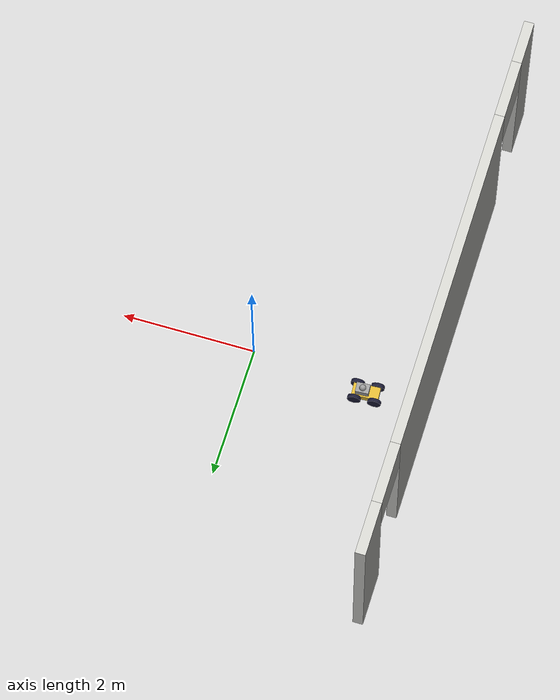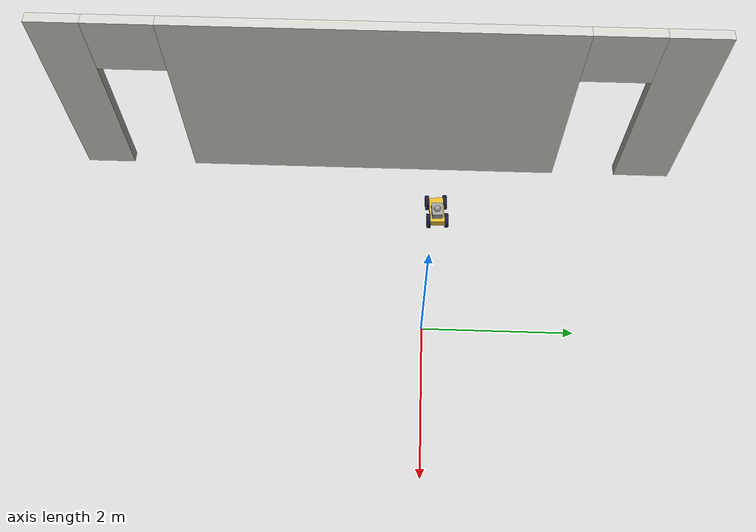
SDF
<sdf version="1.6">
 <world name="default">
  <model name="ground_plane">
   <static>1</static>
   <link name="link">
    <collision name="collision">
     <geometry><plane><normal>0 0 1</normal><size>100 100</size></plane></geometry>
     <surface>
      <contact><collide_bitmask>65535</collide_bitmask></contact>
      <friction><ode><mu>100</mu><mu2>50</mu2></ode></friction>
     </surface>
    </collision>
    <visual name="visual">
     <cast_shadows>0</cast_shadows>
     <geometry><plane><normal>0 0 1</normal><size>100 100</size></plane></geometry>
     <material>
      <script><uri>file://media/materials/scripts/gazebo.material</uri><name>Gazebo/Grey</name></script>
     </material>
    </visual>
   </link>
  </model>
  <model name="house">
   <link name="Wall_43">
    <pose>-2.65056 -0.678 0 0 0 -1.5708</pose>
    <visual name="Wall_43_Visual_0">
     <pose>-3.85891 0 1.4 0 -0 0</pose>
     <geometry><box><size>0.782186 0.15 2.8</size></box></geometry>
     <material>
      <script><uri>file://media/materials/scripts/gazebo.material</uri><name>Gazebo/CeilingTiled</name></script>
      <ambient>1 1 1 1</ambient>
      <shader type="pixel"/>
     </material>
     <meta><layer>0</layer></meta>
    </visual>
    <visual name="Wall_43_Visual_1">
     <pose>0.052093 0 1.4 0 -0 0</pose>
     <geometry><box><size>5.23981 0.15 2.8</size></box></geometry>
     <material>
      <script><uri>file://media/materials/scripts/gazebo.material</uri><name>Gazebo/CeilingTiled</name></script>
      <ambient>1 1 1 1</ambient>
      <shader type="pixel"/>
     </material>
     <meta><layer>0</layer></meta>
    </visual>
    <visual name="Wall_43_Visual_2">
     <pose>3.911 0 1.4 0 -0 0</pose>
     <geometry><box><size>0.678 0.15 2.8</size></box></geometry>
     <material>
      <script><uri>file://media/materials/scripts/gazebo.material</uri><name>Gazebo/CeilingTiled</name></script>
      <ambient>1 1 1 1</ambient>
      <shader type="pixel"/>
     </material>
     <meta><layer>0</layer></meta>
    </visual>
    <visual name="Wall_43_Visual_5">
     <pose>-3.01781 0 2.4 0 -0 0</pose>
     <geometry><box><size>0.9 0.15 0.8</size></box></geometry>
     <material>
      <script><uri>file://media/materials/scripts/gazebo.material</uri><name>Gazebo/CeilingTiled</name></script>
      <ambient>1 1 1 1</ambient>
      <shader type="pixel"/>
     </material>
     <meta><layer>0</layer></meta>
    </visual>
    <visual name="Wall_43_Visual_6">
     <pose>3.122 0 2.4 0 -0 0</pose>
     <geometry><box><size>0.9 0.15 0.8</size></box></geometry>
     <material>
      <script><uri>file://media/materials/scripts/gazebo.material</uri><name>Gazebo/CeilingTiled</name></script>
      <ambient>1 1 1 1</ambient>
      <shader type="pixel"/>
     </material>
     <meta><layer>0</layer></meta>
    </visual>
    <collision name="Wall_43_Collision_0">
     <pose>-3.85891 0 1.4 0 -0 0</pose>
     <geometry><box><size>0.782186 0.15 2.8</size></box></geometry>
     <surface>
      <friction>
       <ode><mu>1</mu><mu2>1</mu2><fdir1>0 0 0</fdir1><slip1>0</slip1><slip2>0</slip2></ode>
       <torsional>
        <coefficient>1</coefficient>
        <patch_radius>0</patch_radius>
        <surface_radius>0</surface_radius>
        <use_patch_radius>1</use_patch_radius>
        <ode><slip>0</slip></ode>
       </torsional>
      </friction>
      <bounce><restitution_coefficient>0</restitution_coefficient><threshold>1e+06</threshold></bounce>
      <contact>
       <collide_without_contact>0</collide_without_contact>
       <collide_without_contact_bitmask>1</collide_without_contact_bitmask>
       <collide_bitmask>1</collide_bitmask>
       <ode>
        <soft_cfm>0</soft_cfm>
        <soft_erp>0.2</soft_erp>
        <kp>1e+13</kp>
        <kd>1</kd>
        <max_vel>0.01</max_vel>
        <min_depth>0</min_depth>
       </ode>
       <bullet>
        <split_impulse>1</split_impulse>
        <split_impulse_penetration_threshold>-0.01</split_impulse_penetration_threshold>
        <soft_cfm>0</soft_cfm>
        <soft_erp>0.2</soft_erp>
        <kp>1e+13</kp>
        <kd>1</kd>
       </bullet>
      </contact>
     </surface>
    </collision>
    <collision name="Wall_43_Collision_1">
     <pose>0.052093 0 1.4 0 -0 0</pose>
     <geometry><box><size>5.23981 0.15 2.8</size></box></geometry>
     <surface>
      <friction>
       <ode><mu>1</mu><mu2>1</mu2><fdir1>0 0 0</fdir1><slip1>0</slip1><slip2>0</slip2></ode>
       <torsional>
        <coefficient>1</coefficient>
        <patch_radius>0</patch_radius>
        <surface_radius>0</surface_radius>
        <use_patch_radius>1</use_patch_radius>
        <ode><slip>0</slip></ode>
       </torsional>
      </friction>
      <bounce><restitution_coefficient>0</restitution_coefficient><threshold>1e+06</threshold></bounce>
      <contact>
       <collide_without_contact>0</collide_without_contact>
       <collide_without_contact_bitmask>1</collide_without_contact_bitmask>
       <collide_bitmask>1</collide_bitmask>
       <ode>
        <soft_cfm>0</soft_cfm>
        <soft_erp>0.2</soft_erp>
        <kp>1e+13</kp>
        <kd>1</kd>
        <max_vel>0.01</max_vel>
        <min_depth>0</min_depth>
       </ode>
       <bullet>
        <split_impulse>1</split_impulse>
        <split_impulse_penetration_threshold>-0.01</split_impulse_penetration_threshold>
        <soft_cfm>0</soft_cfm>
        <soft_erp>0.2</soft_erp>
        <kp>1e+13</kp>
        <kd>1</kd>
       </bullet>
      </contact>
     </surface>
    </collision>
    <collision name="Wall_43_Collision_2">
     <pose>3.911 0 1.4 0 -0 0</pose>
     <geometry><box><size>0.678 0.15 2.8</size></box></geometry>
     <surface>
      <friction>
       <ode><mu>1</mu><mu2>1</mu2><fdir1>0 0 0</fdir1><slip1>0</slip1><slip2>0</slip2></ode>
       <torsional>
        <coefficient>1</coefficient>
        <patch_radius>0</patch_radius>
        <surface_radius>0</surface_radius>
        <use_patch_radius>1</use_patch_radius>
        <ode><slip>0</slip></ode>
       </torsional>
      </friction>
      <bounce><restitution_coefficient>0</restitution_coefficient><threshold>1e+06</threshold></bounce>
      <contact>
       <collide_without_contact>0</collide_without_contact>
       <collide_without_contact_bitmask>1</collide_without_contact_bitmask>
       <collide_bitmask>1</collide_bitmask>
       <ode>
        <soft_cfm>0</soft_cfm>
        <soft_erp>0.2</soft_erp>
        <kp>1e+13</kp>
        <kd>1</kd>
        <max_vel>0.01</max_vel>
        <min_depth>0</min_depth>
       </ode>
       <bullet>
        <split_impulse>1</split_impulse>
        <split_impulse_penetration_threshold>-0.01</split_impulse_penetration_threshold>
        <soft_cfm>0</soft_cfm>
        <soft_erp>0.2</soft_erp>
        <kp>1e+13</kp>
        <kd>1</kd>
       </bullet>
      </contact>
     </surface>
    </collision>
    <collision name="Wall_43_Collision_5">
     <pose>-3.01781 0 2.4 0 -0 0</pose>
     <geometry><box><size>0.9 0.15 0.8</size></box></geometry>
     <surface>
      <friction>
       <ode><mu>1</mu><mu2>1</mu2><fdir1>0 0 0</fdir1><slip1>0</slip1><slip2>0</slip2></ode>
       <torsional>
        <coefficient>1</coefficient>
        <patch_radius>0</patch_radius>
        <surface_radius>0</surface_radius>
        <use_patch_radius>1</use_patch_radius>
        <ode><slip>0</slip></ode>
       </torsional>
      </friction>
      <bounce><restitution_coefficient>0</restitution_coefficient><threshold>1e+06</threshold></bounce>
      <contact>
       <collide_without_contact>0</collide_without_contact>
       <collide_without_contact_bitmask>1</collide_without_contact_bitmask>
       <collide_bitmask>1</collide_bitmask>
       <ode>
        <soft_cfm>0</soft_cfm>
        <soft_erp>0.2</soft_erp>
        <kp>1e+13</kp>
        <kd>1</kd>
        <max_vel>0.01</max_vel>
        <min_depth>0</min_depth>
       </ode>
       <bullet>
        <split_impulse>1</split_impulse>
        <split_impulse_penetration_threshold>-0.01</split_impulse_penetration_threshold>
        <soft_cfm>0</soft_cfm>
        <soft_erp>0.2</soft_erp>
        <kp>1e+13</kp>
        <kd>1</kd>
       </bullet>
      </contact>
     </surface>
    </collision>
    <collision name="Wall_43_Collision_6">
     <pose>3.122 0 2.4 0 -0 0</pose>
     <geometry><box><size>0.9 0.15 0.8</size></box></geometry>
     <surface>
      <friction>
       <ode><mu>1</mu><mu2>1</mu2><fdir1>0 0 0</fdir1><slip1>0</slip1><slip2>0</slip2></ode>
       <torsional>
        <coefficient>1</coefficient>
        <patch_radius>0</patch_radius>
        <surface_radius>0</surface_radius>
        <use_patch_radius>1</use_patch_radius>
        <ode><slip>0</slip></ode>
       </torsional>
      </friction>
      <bounce><restitution_coefficient>0</restitution_coefficient><threshold>1e+06</threshold></bounce>
      <contact>
       <collide_without_contact>0</collide_without_contact>
       <collide_without_contact_bitmask>1</collide_without_contact_bitmask>
       <collide_bitmask>1</collide_bitmask>
       <ode>
        <soft_cfm>0</soft_cfm>
        <soft_erp>0.2</soft_erp>
        <kp>1e+13</kp>
        <kd>1</kd>
        <max_vel>0.01</max_vel>
        <min_depth>0</min_depth>
       </ode>
       <bullet>
        <split_impulse>1</split_impulse>
        <split_impulse_penetration_threshold>-0.01</split_impulse_penetration_threshold>
        <soft_cfm>0</soft_cfm>
        <soft_erp>0.2</soft_erp>
        <kp>1e+13</kp>
        <kd>1</kd>
       </bullet>
      </contact>
     </surface>
    </collision>
   </link>
   <static>1</static>
  </model>
  <model name="robot">
   <link name="link_0">
    <pose>-0 -0 0.5 0 -0 0</pose>
    <inertial>
     <mass>1</mass>
     <inertia>
      <ixx>0.166667</ixx>
      <ixy>0</ixy>
      <ixz>0</ixz>
      <iyy>0.166667</iyy>
      <iyz>0</iyz>
      <izz>0.166667</izz>
     </inertia>
    </inertial>
    <visual name="visual">
     <geometry><box><size>0.4 0.2 0.1</size></box></geometry>
     <material>
      <lighting>1</lighting>
      <script><uri>file://media/materials/scripts/gazebo.material</uri><name>Gazebo/Gold</name></script>
      <shader type="pixel"><normal_map>__default__</normal_map></shader>
      <ambient>0.5 0.75 0 1</ambient>
      <diffuse>0.7 0.9 0 1</diffuse>
      <specular>0.2 0.2 0.2 1</specular>
      <emissive>0.1 0 0.1 1</emissive>
     </material>
    </visual>
    <collision name="collision">
     <geometry><box><size>0.4 0.2 0.1</size></box></geometry>
     <surface>
      <friction>
       <ode><mu>1</mu><mu2>1</mu2><fdir1>0 0 0</fdir1><slip1>0</slip1><slip2>0</slip2></ode>
       <torsional>
        <coefficient>1</coefficient>
        <patch_radius>0</patch_radius>
        <surface_radius>0</surface_radius>
        <use_patch_radius>1</use_patch_radius>
        <ode><slip>0</slip></ode>
       </torsional>
      </friction>
      <bounce><restitution_coefficient>0</restitution_coefficient><threshold>1e+06</threshold></bounce>
      <contact>
       <collide_without_contact>0</collide_without_contact>
       <collide_without_contact_bitmask>1</collide_without_contact_bitmask>
       <collide_bitmask>1</collide_bitmask>
       <ode>
        <soft_cfm>0</soft_cfm>
        <soft_erp>0.2</soft_erp>
        <kp>1e+13</kp>
        <kd>1</kd>
        <max_vel>0.01</max_vel>
        <min_depth>0</min_depth>
       </ode>
       <bullet>
        <split_impulse>1</split_impulse>
        <split_impulse_penetration_threshold>-0.01</split_impulse_penetration_threshold>
        <soft_cfm>0</soft_cfm>
        <soft_erp>0.2</soft_erp>
        <kp>1e+13</kp>
        <kd>1</kd>
       </bullet>
      </contact>
     </surface>
    </collision>
   </link>
   <link name="link_1">
    <pose>0.05 0 0.65 -2e-06 1.5e-05 -0.056012</pose>
    <inertial>
     <mass>1</mass>
     <inertia><ixx>0.1</ixx><ixy>0</ixy><ixz>0</ixz><iyy>0.1</iyy><iyz>0</iyz><izz>0.1</izz></inertia>
    </inertial>
    <visual name="visual">
     <geometry><sphere><radius>0.05</radius></sphere></geometry>
     <material>
      <lighting>1</lighting>
      <script><uri>file://media/materials/scripts/gazebo.material</uri><name>Gazebo/Grey</name></script>
      <shader type="pixel"><normal_map>__default__</normal_map></shader>
      <ambient>0 0 0 1</ambient>
      <diffuse>0 0 0 1</diffuse>
      <specular>0.01 0.01 0.01 1</specular>
      <emissive>0 1 0 1</emissive>
     </material>
    </visual>
    <collision name="collision">
     <geometry><sphere><radius>0.05</radius></sphere></geometry>
     <surface>
      <friction>
       <ode><mu>1</mu><mu2>1</mu2><fdir1>0 0 0</fdir1><slip1>0</slip1><slip2>0</slip2></ode>
       <torsional>
        <coefficient>1</coefficient>
        <patch_radius>0</patch_radius>
        <surface_radius>0</surface_radius>
        <use_patch_radius>1</use_patch_radius>
        <ode><slip>0</slip></ode>
       </torsional>
      </friction>
      <bounce><restitution_coefficient>0</restitution_coefficient><threshold>1e+06</threshold></bounce>
      <contact>
       <collide_without_contact>0</collide_without_contact>
       <collide_without_contact_bitmask>1</collide_without_contact_bitmask>
       <collide_bitmask>1</collide_bitmask>
       <ode>
        <soft_cfm>0</soft_cfm>
        <soft_erp>0.2</soft_erp>
        <kp>1e+13</kp>
        <kd>1</kd>
        <max_vel>0.01</max_vel>
        <min_depth>0</min_depth>
       </ode>
       <bullet>
        <split_impulse>1</split_impulse>
        <split_impulse_penetration_threshold>-0.01</split_impulse_penetration_threshold>
        <soft_cfm>0</soft_cfm>
        <soft_erp>0.2</soft_erp>
        <kp>1e+13</kp>
        <kd>1</kd>
       </bullet>
      </contact>
     </surface>
    </collision>
   </link>
   <link name="link_2">
    <pose>-0.15 -0.12501 0.5 1.5707 -0 0</pose>
    <inertial>
     <mass>1</mass>
     <inertia><ixx>0.145833</ixx><ixy>0</ixy><ixz>0</ixz><iyy>0.145833</iyy><iyz>0</iyz><izz>0.125</izz></inertia>
    </inertial>
    <visual name="visual">
     <geometry><cylinder><radius>0.1</radius><length>0.05</length></cylinder></geometry>
     <material>
      <lighting>1</lighting>
      <script><uri>file://media/materials/scripts/gazebo.material</uri><name>Gazebo/Grey</name></script>
      <shader type="pixel"><normal_map>__default__</normal_map></shader>
      <ambient>0.1 0.1 0.1 1</ambient>
      <diffuse>0.1 0.1 0.2 1</diffuse>
      <specular>0.01 0.01 0.01 1</specular>
      <emissive>0 0 0 1</emissive>
     </material>
    </visual>
    <collision name="collision">
     <geometry><cylinder><radius>0.1</radius><length>0.05</length></cylinder></geometry>
     <surface>
      <friction>
       <ode><mu>1</mu><mu2>1</mu2><fdir1>0 0 0</fdir1><slip1>0</slip1><slip2>0</slip2></ode>
       <torsional>
        <coefficient>1</coefficient>
        <patch_radius>0</patch_radius>
        <surface_radius>0</surface_radius>
        <use_patch_radius>1</use_patch_radius>
        <ode><slip>0</slip></ode>
       </torsional>
      </friction>
      <bounce><restitution_coefficient>0</restitution_coefficient><threshold>1e+06</threshold></bounce>
      <contact>
       <collide_without_contact>0</collide_without_contact>
       <collide_without_contact_bitmask>1</collide_without_contact_bitmask>
       <collide_bitmask>1</collide_bitmask>
       <ode>
        <soft_cfm>0</soft_cfm>
        <soft_erp>0.2</soft_erp>
        <kp>1e+13</kp>
        <kd>1</kd>
        <max_vel>0.01</max_vel>
        <min_depth>0</min_depth>
       </ode>
       <bullet>
        <split_impulse>1</split_impulse>
        <split_impulse_penetration_threshold>-0.01</split_impulse_penetration_threshold>
        <soft_cfm>0</soft_cfm>
        <soft_erp>0.2</soft_erp>
        <kp>1e+13</kp>
        <kd>1</kd>
       </bullet>
      </contact>
     </surface>
    </collision>
   </link>
   <link name="link_2_clone">
    <pose>0.15 -0.12501 0.5 1.5707 -0 0</pose>
    <inertial>
     <mass>1</mass>
     <inertia><ixx>0.145833</ixx><ixy>0</ixy><ixz>0</ixz><iyy>0.145833</iyy><iyz>0</iyz><izz>0.125</izz></inertia>
    </inertial>
    <visual name="visual">
     <geometry><cylinder><radius>0.1</radius><length>0.05</length></cylinder></geometry>
     <material>
      <lighting>1</lighting>
      <script><uri>file://media/materials/scripts/gazebo.material</uri><name>Gazebo/Grey</name></script>
      <shader type="pixel"><normal_map>__default__</normal_map></shader>
      <ambient>0.1 0.1 0.1 1</ambient>
      <diffuse>0.1 0.1 0.2 1</diffuse>
      <specular>0.01 0.01 0.01 1</specular>
      <emissive>0 0 0 1</emissive>
     </material>
    </visual>
    <collision name="collision">
     <geometry><cylinder><radius>0.1</radius><length>0.05</length></cylinder></geometry>
     <surface>
      <friction>
       <ode><mu>1</mu><mu2>1</mu2><fdir1>0 0 0</fdir1><slip1>0</slip1><slip2>0</slip2></ode>
       <torsional>
        <coefficient>1</coefficient>
        <patch_radius>0</patch_radius>
        <surface_radius>0</surface_radius>
        <use_patch_radius>1</use_patch_radius>
        <ode><slip>0</slip></ode>
       </torsional>
      </friction>
      <bounce><restitution_coefficient>0</restitution_coefficient><threshold>1e+06</threshold></bounce>
      <contact>
       <collide_without_contact>0</collide_without_contact>
       <collide_without_contact_bitmask>1</collide_without_contact_bitmask>
       <collide_bitmask>1</collide_bitmask>
       <ode>
        <soft_cfm>0</soft_cfm>
        <soft_erp>0.2</soft_erp>
        <kp>1e+13</kp>
        <kd>1</kd>
        <max_vel>0.01</max_vel>
        <min_depth>0</min_depth>
       </ode>
       <bullet>
        <split_impulse>1</split_impulse>
        <split_impulse_penetration_threshold>-0.01</split_impulse_penetration_threshold>
        <soft_cfm>0</soft_cfm>
        <soft_erp>0.2</soft_erp>
        <kp>1e+13</kp>
        <kd>1</kd>
       </bullet>
      </contact>
     </surface>
    </collision>
   </link>
   <link name="link_2_clone_0">
    <pose>0.15 0.1251 0.5 1.5707 -0 0</pose>
    <inertial>
     <mass>1</mass>
     <inertia><ixx>0.145833</ixx><ixy>0</ixy><ixz>0</ixz><iyy>0.145833</iyy><iyz>0</iyz><izz>0.125</izz></inertia>
    </inertial>
    <visual name="visual">
     <geometry><cylinder><radius>0.1</radius><length>0.05</length></cylinder></geometry>
     <material>
      <lighting>1</lighting>
      <script><uri>file://media/materials/scripts/gazebo.material</uri><name>Gazebo/Grey</name></script>
      <shader type="pixel"><normal_map>__default__</normal_map></shader>
      <ambient>0.1 0.1 0.1 1</ambient>
      <diffuse>0.1 0.1 0.2 1</diffuse>
      <specular>0.01 0.01 0.01 1</specular>
      <emissive>0 0 0 1</emissive>
     </material>
    </visual>
    <collision name="collision">
     <geometry><cylinder><radius>0.1</radius><length>0.05</length></cylinder></geometry>
     <surface>
      <friction>
       <ode><mu>1</mu><mu2>1</mu2><fdir1>0 0 0</fdir1><slip1>0</slip1><slip2>0</slip2></ode>
       <torsional>
        <coefficient>1</coefficient>
        <patch_radius>0</patch_radius>
        <surface_radius>0</surface_radius>
        <use_patch_radius>1</use_patch_radius>
        <ode><slip>0</slip></ode>
       </torsional>
      </friction>
      <bounce><restitution_coefficient>0</restitution_coefficient><threshold>1e+06</threshold></bounce>
      <contact>
       <collide_without_contact>0</collide_without_contact>
       <collide_without_contact_bitmask>1</collide_without_contact_bitmask>
       <collide_bitmask>1</collide_bitmask>
       <ode>
        <soft_cfm>0</soft_cfm>
        <soft_erp>0.2</soft_erp>
        <kp>1e+13</kp>
        <kd>1</kd>
        <max_vel>0.01</max_vel>
        <min_depth>0</min_depth>
       </ode>
       <bullet>
        <split_impulse>1</split_impulse>
        <split_impulse_penetration_threshold>-0.01</split_impulse_penetration_threshold>
        <soft_cfm>0</soft_cfm>
        <soft_erp>0.2</soft_erp>
        <kp>1e+13</kp>
        <kd>1</kd>
       </bullet>
      </contact>
     </surface>
    </collision>
   </link>
   <link name="link_2_clone_1">
    <pose>-0.15 0.12501 0.5 1.5707 -0 0</pose>
    <inertial>
     <mass>1</mass>
     <inertia><ixx>0.145833</ixx><ixy>0</ixy><ixz>0</ixz><iyy>0.145833</iyy><iyz>0</iyz><izz>0.125</izz></inertia>
    </inertial>
    <visual name="visual">
     <geometry><cylinder><radius>0.1</radius><length>0.05</length></cylinder></geometry>
     <material>
      <lighting>1</lighting>
      <script><uri>file://media/materials/scripts/gazebo.material</uri><name>Gazebo/Grey</name></script>
      <shader type="pixel"><normal_map>__default__</normal_map></shader>
      <ambient>0.1 0.1 0.1 1</ambient>
      <diffuse>0.1 0.1 0.2 1</diffuse>
      <specular>0 0 0 1</specular>
      <emissive>0 0 0 1</emissive>
     </material>
    </visual>
    <collision name="collision">
     <geometry><cylinder><radius>0.1</radius><length>0.05</length></cylinder></geometry>
     <surface>
      <friction>
       <ode><mu>1</mu><mu2>1</mu2><fdir1>0 0 0</fdir1><slip1>0</slip1><slip2>0</slip2></ode>
       <torsional>
        <coefficient>1</coefficient>
        <patch_radius>0</patch_radius>
        <surface_radius>0</surface_radius>
        <use_patch_radius>1</use_patch_radius>
        <ode><slip>0</slip></ode>
       </torsional>
      </friction>
      <bounce><restitution_coefficient>0</restitution_coefficient><threshold>1e+06</threshold></bounce>
      <contact>
       <collide_without_contact>0</collide_without_contact>
       <collide_without_contact_bitmask>1</collide_without_contact_bitmask>
       <collide_bitmask>1</collide_bitmask>
       <ode>
        <soft_cfm>0</soft_cfm>
        <soft_erp>0.2</soft_erp>
        <kp>1e+13</kp>
        <kd>1</kd>
        <max_vel>0.01</max_vel>
        <min_depth>0</min_depth>
       </ode>
       <bullet>
        <split_impulse>1</split_impulse>
        <split_impulse_penetration_threshold>-0.01</split_impulse_penetration_threshold>
        <soft_cfm>0</soft_cfm>
        <soft_erp>0.2</soft_erp>
        <kp>1e+13</kp>
        <kd>1</kd>
       </bullet>
      </contact>
     </surface>
    </collision>
   </link>
   <link name="link_5">
    <pose>0.05 -0 0.6 0 -0 0</pose>
    <inertial>
     <mass>1</mass>
     <inertia>
      <ixx>0.166667</ixx>
      <ixy>0</ixy>
      <ixz>0</ixz>
      <iyy>0.166667</iyy>
      <iyz>0</iyz>
      <izz>0.166667</izz>
     </inertia>
    </inertial>
    <visual name="visual">
     <geometry><box><size>0.2 0.15 0.1</size></box></geometry>
     <material>
      <lighting>1</lighting>
      <script><uri>file://media/materials/scripts/gazebo.material</uri><name>Gazebo/Grey</name></script>
      <shader type="pixel"><normal_map>__default__</normal_map></shader>
      <ambient>0.5 0.5 0.5 1</ambient>
      <diffuse>0.7 0.7 0.7 1</diffuse>
      <specular>0.2 0.2 0.2 1</specular>
      <emissive>0 0 0 1</emissive>
     </material>
    </visual>
    <collision name="collision">
     <geometry><box><size>0.2 0.15 0.1</size></box></geometry>
     <surface>
      <friction>
       <ode><mu>1</mu><mu2>1</mu2><fdir1>0 0 0</fdir1><slip1>0</slip1><slip2>0</slip2></ode>
       <torsional>
        <coefficient>1</coefficient>
        <patch_radius>0</patch_radius>
        <surface_radius>0</surface_radius>
        <use_patch_radius>1</use_patch_radius>
        <ode><slip>0</slip></ode>
       </torsional>
      </friction>
      <bounce><restitution_coefficient>0</restitution_coefficient><threshold>1e+06</threshold></bounce>
      <contact>
       <collide_without_contact>0</collide_without_contact>
       <collide_without_contact_bitmask>1</collide_without_contact_bitmask>
       <collide_bitmask>1</collide_bitmask>
       <ode>
        <soft_cfm>0</soft_cfm>
        <soft_erp>0.2</soft_erp>
        <kp>1e+13</kp>
        <kd>1</kd>
        <max_vel>0.01</max_vel>
        <min_depth>0</min_depth>
       </ode>
       <bullet>
        <split_impulse>1</split_impulse>
        <split_impulse_penetration_threshold>-0.01</split_impulse_penetration_threshold>
        <soft_cfm>0</soft_cfm>
        <soft_erp>0.2</soft_erp>
        <kp>1e+13</kp>
        <kd>1</kd>
       </bullet>
      </contact>
     </surface>
    </collision>
   </link>
   <joint name="link_0_JOINT_0" type="revolute">
    <parent>link_0</parent>
    <child>link_2</child>
    <axis>
     <xyz>0 0 1</xyz>
     <use_parent_model_frame>0</use_parent_model_frame>
     <limit>
      <lower>-1.79769e+308</lower>
      <upper>1.79769e+308</upper>
      <effort>-1</effort>
      <velocity>-1</velocity>
     </limit>
     <dynamics>
      <spring_reference>0</spring_reference>
      <spring_stiffness>0</spring_stiffness>
      <damping>0</damping>
      <friction>0</friction>
     </dynamics>
    </axis>
    <physics>
     <ode><limit><cfm>0</cfm><erp>0.2</erp></limit><suspension><cfm>0</cfm><erp>0.2</erp></suspension></ode>
    </physics>
   </joint>
   <joint name="link_0_JOINT_1_0" type="revolute">
    <parent>link_0</parent>
    <child>link_2_clone_0</child>
    <axis>
     <xyz>0 0 1</xyz>
     <use_parent_model_frame>0</use_parent_model_frame>
     <limit>
      <lower>-1.79769e+308</lower>
      <upper>1.79769e+308</upper>
      <effort>-1</effort>
      <velocity>-1</velocity>
     </limit>
     <dynamics>
      <spring_reference>0</spring_reference>
      <spring_stiffness>0</spring_stiffness>
      <damping>0</damping>
      <friction>0</friction>
     </dynamics>
    </axis>
    <physics>
     <ode><limit><cfm>0</cfm><erp>0.2</erp></limit><suspension><cfm>0</cfm><erp>0.2</erp></suspension></ode>
    </physics>
   </joint>
   <joint name="link_0_JOINT_1" type="revolute">
    <parent>link_0</parent>
    <child>link_2_clone</child>
    <axis>
     <xyz>0 0 1</xyz>
     <use_parent_model_frame>0</use_parent_model_frame>
     <limit>
      <lower>-1.79769e+308</lower>
      <upper>1.79769e+308</upper>
      <effort>-1</effort>
      <velocity>-1</velocity>
     </limit>
     <dynamics>
      <spring_reference>0</spring_reference>
      <spring_stiffness>0</spring_stiffness>
      <damping>0</damping>
      <friction>0</friction>
     </dynamics>
    </axis>
    <physics>
     <ode><limit><cfm>0</cfm><erp>0.2</erp></limit><suspension><cfm>0</cfm><erp>0.2</erp></suspension></ode>
    </physics>
   </joint>
   <joint name="link_0_JOINT_2" type="revolute">
    <parent>link_0</parent>
    <child>link_2_clone_1</child>
    <axis>
     <xyz>0 0 1</xyz>
     <use_parent_model_frame>0</use_parent_model_frame>
     <limit>
      <lower>-1.79769e+308</lower>
      <upper>1.79769e+308</upper>
      <effort>-1</effort>
      <velocity>-1</velocity>
     </limit>
     <dynamics>
      <spring_reference>0</spring_reference>
      <spring_stiffness>0</spring_stiffness>
      <damping>0</damping>
      <friction>0</friction>
     </dynamics>
    </axis>
    <physics>
     <ode><limit><cfm>0</cfm><erp>0.2</erp></limit><suspension><cfm>0</cfm><erp>0.2</erp></suspension></ode>
    </physics>
   </joint>
   <joint name="link_0_JOINT_3" type="fixed">
    <parent>link_0</parent>
    <child>link_5</child>
    <physics>
     <ode><limit><cfm>0</cfm><erp>0.2</erp></limit><suspension><cfm>0</cfm><erp>0.2</erp></suspension></ode>
    </physics>
   </joint>
   <joint name="link_5_JOINT_0" type="fixed">
    <parent>link_5</parent>
    <child>link_1</child>
    <physics>
     <ode><limit><cfm>0</cfm><erp>0.2</erp></limit><suspension><cfm>0</cfm><erp>0.2</erp></suspension></ode>
    </physics>
   </joint>
   <static>0</static>
   <pose>-1.76597 0.195178 -0.374998 -4e-06 -0 0.067934</pose>
  </model>
 </world>
</sdf>
